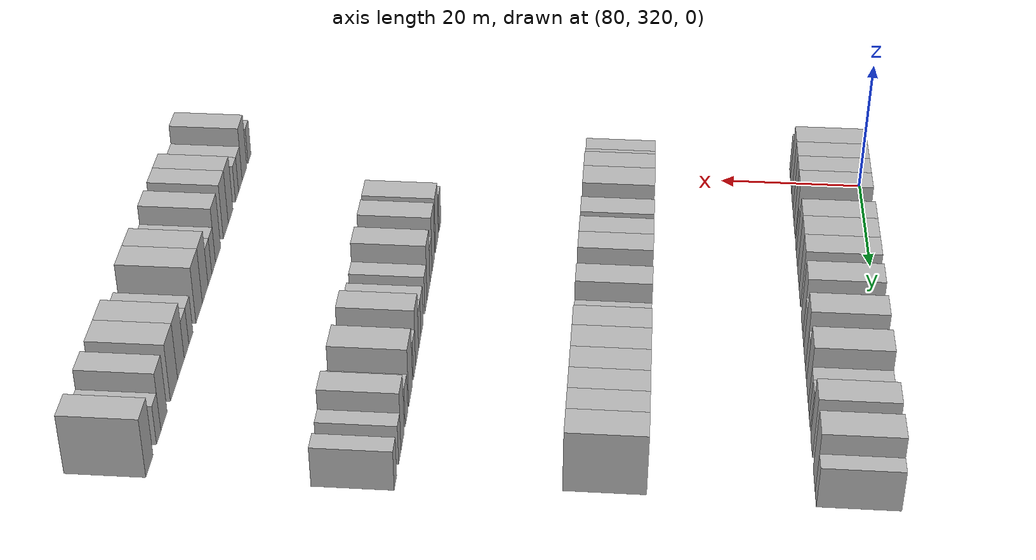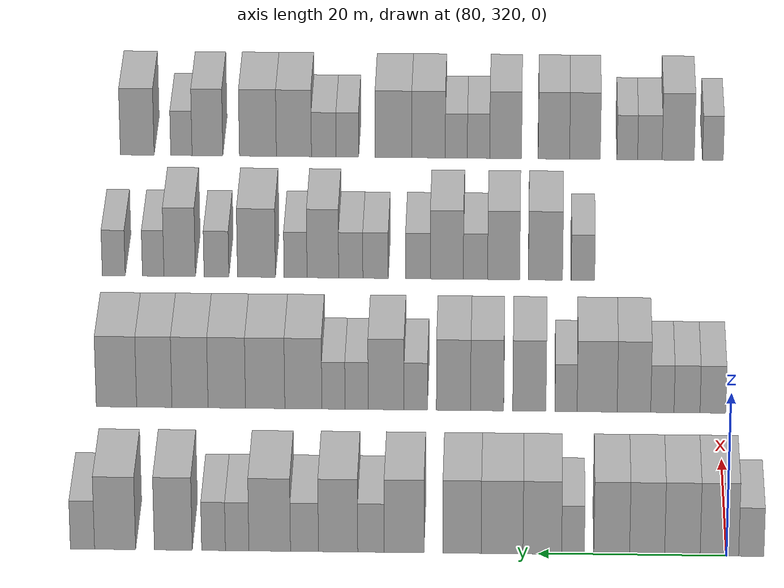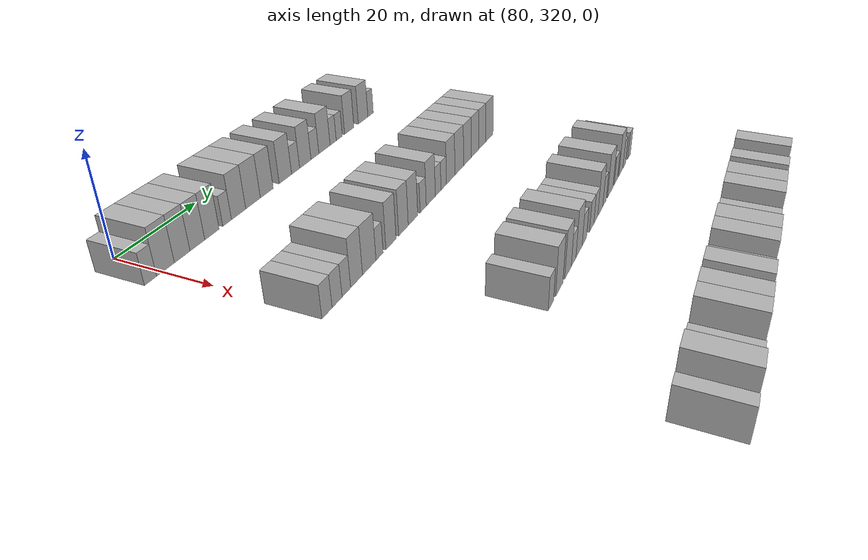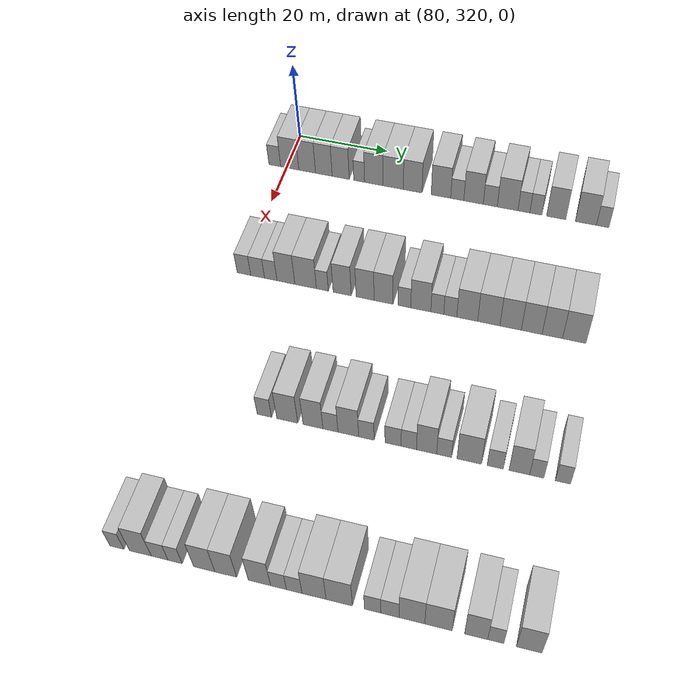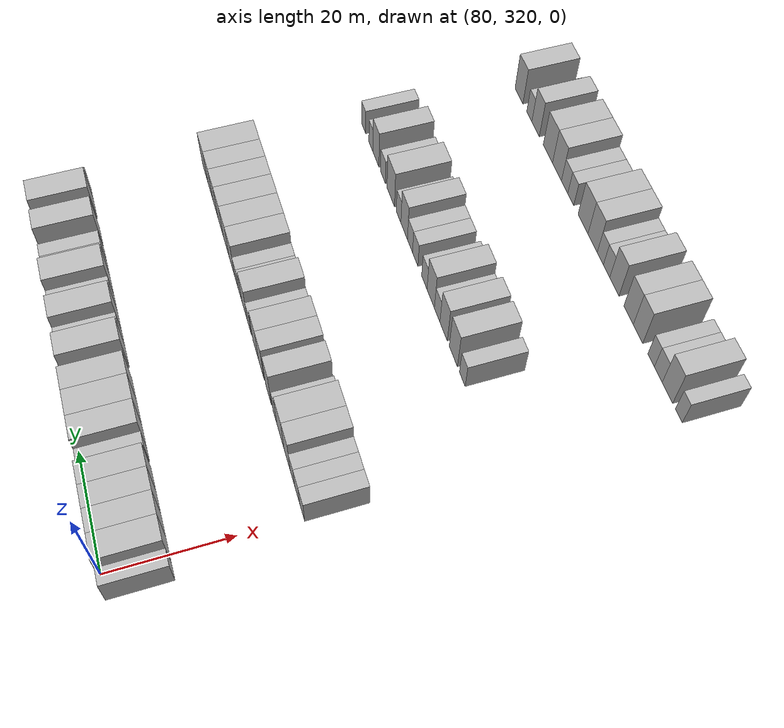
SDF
<sdf version="1.6">
 <world name="default">
  <model name="building_648">
   <static>1</static>
   <pose>85.0000 317.3850 0 0.000000 0.000000 0.000000</pose>
   <link name="link">
    <pose>0 0 3.00 0 0 0</pose>
    <collision name="collision"><geometry><box><size>10.0000 2.6740 6.0000</size></box></geometry></collision>
    <visual name="visual">
     <cast_shadows>0</cast_shadows>
     <geometry><box><size>10.0000 2.6740 6.0000</size></box></geometry>
     <material>
      <script>
       <uri>model://HANNAS_wall/materials/scripts</uri>
       <uri>model://HANNAS_wall/materials/textures</uri>
       <name>vrc/HANNAS_wall</name>
      </script>
     </material>
    </visual>
   </link>
  </model>
  <model name="building_649">
   <static>1</static>
   <pose>85.0000 320.7683 0 0.000000 0.000000 0.000000</pose>
   <link name="link">
    <pose>0 0 4.50 0 0 0</pose>
    <collision name="collision"><geometry><box><size>10.0000 4.0926 9.0000</size></box></geometry></collision>
    <visual name="visual">
     <cast_shadows>0</cast_shadows>
     <geometry><box><size>10.0000 4.0926 9.0000</size></box></geometry>
     <material>
      <script>
       <uri>model://HANNAS_wall/materials/scripts</uri>
       <uri>model://HANNAS_wall/materials/textures</uri>
       <name>vrc/HANNAS_wall</name>
      </script>
     </material>
    </visual>
   </link>
  </model>
  <model name="building_650">
   <static>1</static>
   <pose>85.0000 324.6993 0 0.000000 0.000000 0.000000</pose>
   <link name="link">
    <pose>0 0 4.50 0 0 0</pose>
    <collision name="collision"><geometry><box><size>10.0000 3.7693 9.0000</size></box></geometry></collision>
    <visual name="visual">
     <cast_shadows>0</cast_shadows>
     <geometry><box><size>10.0000 3.7693 9.0000</size></box></geometry>
     <material>
      <script>
       <uri>model://HANNAS_wall/materials/scripts</uri>
       <uri>model://HANNAS_wall/materials/textures</uri>
       <name>vrc/HANNAS_wall</name>
      </script>
     </material>
    </visual>
   </link>
  </model>
  <model name="building_651">
   <static>1</static>
   <pose>85.0000 328.4505 0 0.000000 0.000000 0.000000</pose>
   <link name="link">
    <pose>0 0 4.50 0 0 0</pose>
    <collision name="collision"><geometry><box><size>10.0000 3.7331 9.0000</size></box></geometry></collision>
    <visual name="visual">
     <cast_shadows>0</cast_shadows>
     <geometry><box><size>10.0000 3.7331 9.0000</size></box></geometry>
     <material>
      <script>
       <uri>model://HANNAS_wall/materials/scripts</uri>
       <uri>model://HANNAS_wall/materials/textures</uri>
       <name>vrc/HANNAS_wall</name>
      </script>
     </material>
    </visual>
   </link>
  </model>
  <model name="building_652">
   <static>1</static>
   <pose>85.0000 332.2208 0 0.000000 0.000000 0.000000</pose>
   <link name="link">
    <pose>0 0 4.50 0 0 0</pose>
    <collision name="collision"><geometry><box><size>10.0000 3.8075 9.0000</size></box></geometry></collision>
    <visual name="visual">
     <cast_shadows>0</cast_shadows>
     <geometry><box><size>10.0000 3.8075 9.0000</size></box></geometry>
     <material>
      <script>
       <uri>model://HANNAS_wall/materials/scripts</uri>
       <uri>model://HANNAS_wall/materials/textures</uri>
       <name>vrc/HANNAS_wall</name>
      </script>
     </material>
    </visual>
   </link>
  </model>
  <model name="building_653">
   <static>1</static>
   <pose>85.0000 336.3339 0 0.000000 0.000000 0.000000</pose>
   <link name="link">
    <pose>0 0 3.00 0 0 0</pose>
    <collision name="collision"><geometry><box><size>10.0000 2.4187 6.0000</size></box></geometry></collision>
    <visual name="visual">
     <cast_shadows>0</cast_shadows>
     <geometry><box><size>10.0000 2.4187 6.0000</size></box></geometry>
     <material>
      <script>
       <uri>model://HANNAS_wall/materials/scripts</uri>
       <uri>model://HANNAS_wall/materials/textures</uri>
       <name>vrc/HANNAS_wall</name>
      </script>
     </material>
    </visual>
   </link>
  </model>
  <model name="building_654">
   <static>1</static>
   <pose>85.0000 339.5963 0 0.000000 0.000000 0.000000</pose>
   <link name="link">
    <pose>0 0 4.50 0 0 0</pose>
    <collision name="collision"><geometry><box><size>10.0000 4.1062 9.0000</size></box></geometry></collision>
    <visual name="visual">
     <cast_shadows>0</cast_shadows>
     <geometry><box><size>10.0000 4.1062 9.0000</size></box></geometry>
     <material>
      <script>
       <uri>model://HANNAS_wall/materials/scripts</uri>
       <uri>model://HANNAS_wall/materials/textures</uri>
       <name>vrc/HANNAS_wall</name>
      </script>
     </material>
    </visual>
   </link>
  </model>
  <model name="building_655">
   <static>1</static>
   <pose>85.0000 343.8708 0 0.000000 0.000000 0.000000</pose>
   <link name="link">
    <pose>0 0 4.50 0 0 0</pose>
    <collision name="collision"><geometry><box><size>10.0000 4.4428 9.0000</size></box></geometry></collision>
    <visual name="visual">
     <cast_shadows>0</cast_shadows>
     <geometry><box><size>10.0000 4.4428 9.0000</size></box></geometry>
     <material>
      <script>
       <uri>model://HANNAS_wall/materials/scripts</uri>
       <uri>model://HANNAS_wall/materials/textures</uri>
       <name>vrc/HANNAS_wall</name>
      </script>
     </material>
    </visual>
   </link>
  </model>
  <model name="building_656">
   <static>1</static>
   <pose>85.0000 348.1341 0 0.000000 0.000000 0.000000</pose>
   <link name="link">
    <pose>0 0 4.50 0 0 0</pose>
    <collision name="collision"><geometry><box><size>10.0000 4.0838 9.0000</size></box></geometry></collision>
    <visual name="visual">
     <cast_shadows>0</cast_shadows>
     <geometry><box><size>10.0000 4.0838 9.0000</size></box></geometry>
     <material>
      <script>
       <uri>model://HANNAS_wall/materials/scripts</uri>
       <uri>model://HANNAS_wall/materials/textures</uri>
       <name>vrc/HANNAS_wall</name>
      </script>
     </material>
    </visual>
   </link>
  </model>
  <model name="building_657">
   <static>1</static>
   <pose>85.0000 354.2867 0 0.000000 0.000000 0.000000</pose>
   <link name="link">
    <pose>0 0 4.50 0 0 0</pose>
    <collision name="collision"><geometry><box><size>10.0000 4.2215 9.0000</size></box></geometry></collision>
    <visual name="visual">
     <cast_shadows>0</cast_shadows>
     <geometry><box><size>10.0000 4.2215 9.0000</size></box></geometry>
     <material>
      <script>
       <uri>model://HANNAS_wall/materials/scripts</uri>
       <uri>model://HANNAS_wall/materials/textures</uri>
       <name>vrc/HANNAS_wall</name>
      </script>
     </material>
    </visual>
   </link>
  </model>
  <model name="building_658">
   <static>1</static>
   <pose>85.0000 357.8116 0 0.000000 0.000000 0.000000</pose>
   <link name="link">
    <pose>0 0 3.00 0 0 0</pose>
    <collision name="collision"><geometry><box><size>10.0000 2.8283 6.0000</size></box></geometry></collision>
    <visual name="visual">
     <cast_shadows>0</cast_shadows>
     <geometry><box><size>10.0000 2.8283 6.0000</size></box></geometry>
     <material>
      <script>
       <uri>model://HANNAS_wall/materials/scripts</uri>
       <uri>model://HANNAS_wall/materials/textures</uri>
       <name>vrc/HANNAS_wall</name>
      </script>
     </material>
    </visual>
   </link>
  </model>
  <model name="building_659">
   <static>1</static>
   <pose>85.0000 361.3165 0 0.000000 0.000000 0.000000</pose>
   <link name="link">
    <pose>0 0 4.50 0 0 0</pose>
    <collision name="collision"><geometry><box><size>10.0000 4.1814 9.0000</size></box></geometry></collision>
    <visual name="visual">
     <cast_shadows>0</cast_shadows>
     <geometry><box><size>10.0000 4.1814 9.0000</size></box></geometry>
     <material>
      <script>
       <uri>model://HANNAS_wall/materials/scripts</uri>
       <uri>model://HANNAS_wall/materials/textures</uri>
       <name>vrc/HANNAS_wall</name>
      </script>
     </material>
    </visual>
   </link>
  </model>
  <model name="building_660">
   <static>1</static>
   <pose>85.0000 364.8974 0 0.000000 0.000000 0.000000</pose>
   <link name="link">
    <pose>0 0 3.00 0 0 0</pose>
    <collision name="collision"><geometry><box><size>10.0000 2.9804 6.0000</size></box></geometry></collision>
    <visual name="visual">
     <cast_shadows>0</cast_shadows>
     <geometry><box><size>10.0000 2.9804 6.0000</size></box></geometry>
     <material>
      <script>
       <uri>model://HANNAS_wall/materials/scripts</uri>
       <uri>model://HANNAS_wall/materials/textures</uri>
       <name>vrc/HANNAS_wall</name>
      </script>
     </material>
    </visual>
   </link>
  </model>
  <model name="building_661">
   <static>1</static>
   <pose>85.0000 368.6003 0 0.000000 0.000000 0.000000</pose>
   <link name="link">
    <pose>0 0 4.50 0 0 0</pose>
    <collision name="collision"><geometry><box><size>10.0000 4.4254 9.0000</size></box></geometry></collision>
    <visual name="visual">
     <cast_shadows>0</cast_shadows>
     <geometry><box><size>10.0000 4.4254 9.0000</size></box></geometry>
     <material>
      <script>
       <uri>model://HANNAS_wall/materials/scripts</uri>
       <uri>model://HANNAS_wall/materials/textures</uri>
       <name>vrc/HANNAS_wall</name>
      </script>
     </material>
    </visual>
   </link>
  </model>
  <model name="building_662">
   <static>1</static>
   <pose>85.0000 372.0662 0 0.000000 0.000000 0.000000</pose>
   <link name="link">
    <pose>0 0 3.00 0 0 0</pose>
    <collision name="collision"><geometry><box><size>10.0000 2.5065 6.0000</size></box></geometry></collision>
    <visual name="visual">
     <cast_shadows>0</cast_shadows>
     <geometry><box><size>10.0000 2.5065 6.0000</size></box></geometry>
     <material>
      <script>
       <uri>model://HANNAS_wall/materials/scripts</uri>
       <uri>model://HANNAS_wall/materials/textures</uri>
       <name>vrc/HANNAS_wall</name>
      </script>
     </material>
    </visual>
   </link>
  </model>
  <model name="building_663">
   <static>1</static>
   <pose>85.0000 374.5858 0 0.000000 0.000000 0.000000</pose>
   <link name="link">
    <pose>0 0 3.00 0 0 0</pose>
    <collision name="collision"><geometry><box><size>10.0000 2.5327 6.0000</size></box></geometry></collision>
    <visual name="visual">
     <cast_shadows>0</cast_shadows>
     <geometry><box><size>10.0000 2.5327 6.0000</size></box></geometry>
     <material>
      <script>
       <uri>model://HANNAS_wall/materials/scripts</uri>
       <uri>model://HANNAS_wall/materials/textures</uri>
       <name>vrc/HANNAS_wall</name>
      </script>
     </material>
    </visual>
   </link>
  </model>
  <model name="building_664">
   <static>1</static>
   <pose>85.0000 378.8697 0 0.000000 0.000000 0.000000</pose>
   <link name="link">
    <pose>0 0 4.50 0 0 0</pose>
    <collision name="collision"><geometry><box><size>10.0000 4.0352 9.0000</size></box></geometry></collision>
    <visual name="visual">
     <cast_shadows>0</cast_shadows>
     <geometry><box><size>10.0000 4.0352 9.0000</size></box></geometry>
     <material>
      <script>
       <uri>model://HANNAS_wall/materials/scripts</uri>
       <uri>model://HANNAS_wall/materials/textures</uri>
       <name>vrc/HANNAS_wall</name>
      </script>
     </material>
    </visual>
   </link>
  </model>
  <model name="building_665">
   <static>1</static>
   <pose>85.0000 385.0764 0 0.000000 0.000000 0.000000</pose>
   <link name="link">
    <pose>0 0 4.50 0 0 0</pose>
    <collision name="collision"><geometry><box><size>10.0000 4.3782 9.0000</size></box></geometry></collision>
    <visual name="visual">
     <cast_shadows>0</cast_shadows>
     <geometry><box><size>10.0000 4.3782 9.0000</size></box></geometry>
     <material>
      <script>
       <uri>model://HANNAS_wall/materials/scripts</uri>
       <uri>model://HANNAS_wall/materials/textures</uri>
       <name>vrc/HANNAS_wall</name>
      </script>
     </material>
    </visual>
   </link>
  </model>
  <model name="building_666">
   <static>1</static>
   <pose>85.0000 388.5542 0 0.000000 0.000000 0.000000</pose>
   <link name="link">
    <pose>0 0 3.00 0 0 0</pose>
    <collision name="collision"><geometry><box><size>10.0000 2.5774 6.0000</size></box></geometry></collision>
    <visual name="visual">
     <cast_shadows>0</cast_shadows>
     <geometry><box><size>10.0000 2.5774 6.0000</size></box></geometry>
     <material>
      <script>
       <uri>model://HANNAS_wall/materials/scripts</uri>
       <uri>model://HANNAS_wall/materials/textures</uri>
       <name>vrc/HANNAS_wall</name>
      </script>
     </material>
    </visual>
   </link>
  </model>
  <model name="building_878">
   <static>1</static>
   <pose>115.0000 320.7036 0 0.000000 0.000000 0.000000</pose>
   <link name="link">
    <pose>0 0 3.00 0 0 0</pose>
    <collision name="collision"><geometry><box><size>10.0000 2.8445 6.0000</size></box></geometry></collision>
    <visual name="visual">
     <cast_shadows>0</cast_shadows>
     <geometry><box><size>10.0000 2.8445 6.0000</size></box></geometry>
     <material>
      <script>
       <uri>model://HANNAS_wall/materials/scripts</uri>
       <uri>model://HANNAS_wall/materials/textures</uri>
       <name>vrc/HANNAS_wall</name>
      </script>
     </material>
    </visual>
   </link>
  </model>
  <model name="building_879">
   <static>1</static>
   <pose>115.0000 323.5686 0 0.000000 0.000000 0.000000</pose>
   <link name="link">
    <pose>0 0 3.00 0 0 0</pose>
    <collision name="collision"><geometry><box><size>10.0000 2.8855 6.0000</size></box></geometry></collision>
    <visual name="visual">
     <cast_shadows>0</cast_shadows>
     <geometry><box><size>10.0000 2.8855 6.0000</size></box></geometry>
     <material>
      <script>
       <uri>model://HANNAS_wall/materials/scripts</uri>
       <uri>model://HANNAS_wall/materials/textures</uri>
       <name>vrc/HANNAS_wall</name>
      </script>
     </material>
    </visual>
   </link>
  </model>
  <model name="building_880">
   <static>1</static>
   <pose>115.0000 326.3033 0 0.000000 0.000000 0.000000</pose>
   <link name="link">
    <pose>0 0 3.00 0 0 0</pose>
    <collision name="collision"><geometry><box><size>10.0000 2.5839 6.0000</size></box></geometry></collision>
    <visual name="visual">
     <cast_shadows>0</cast_shadows>
     <geometry><box><size>10.0000 2.5839 6.0000</size></box></geometry>
     <material>
      <script>
       <uri>model://HANNAS_wall/materials/scripts</uri>
       <uri>model://HANNAS_wall/materials/textures</uri>
       <name>vrc/HANNAS_wall</name>
      </script>
     </material>
    </visual>
   </link>
  </model>
  <model name="building_881">
   <static>1</static>
   <pose>115.0000 329.4584 0 0.000000 0.000000 0.000000</pose>
   <link name="link">
    <pose>0 0 4.50 0 0 0</pose>
    <collision name="collision"><geometry><box><size>10.0000 3.7263 9.0000</size></box></geometry></collision>
    <visual name="visual">
     <cast_shadows>0</cast_shadows>
     <geometry><box><size>10.0000 3.7263 9.0000</size></box></geometry>
     <material>
      <script>
       <uri>model://HANNAS_wall/materials/scripts</uri>
       <uri>model://HANNAS_wall/materials/textures</uri>
       <name>vrc/HANNAS_wall</name>
      </script>
     </material>
    </visual>
   </link>
  </model>
  <model name="building_882">
   <static>1</static>
   <pose>115.0000 333.5451 0 0.000000 0.000000 0.000000</pose>
   <link name="link">
    <pose>0 0 4.50 0 0 0</pose>
    <collision name="collision"><geometry><box><size>10.0000 4.4471 9.0000</size></box></geometry></collision>
    <visual name="visual">
     <cast_shadows>0</cast_shadows>
     <geometry><box><size>10.0000 4.4471 9.0000</size></box></geometry>
     <material>
      <script>
       <uri>model://HANNAS_wall/materials/scripts</uri>
       <uri>model://HANNAS_wall/materials/textures</uri>
       <name>vrc/HANNAS_wall</name>
      </script>
     </material>
    </visual>
   </link>
  </model>
  <model name="building_883">
   <static>1</static>
   <pose>115.0000 336.9957 0 0.000000 0.000000 0.000000</pose>
   <link name="link">
    <pose>0 0 3.00 0 0 0</pose>
    <collision name="collision"><geometry><box><size>10.0000 2.4541 6.0000</size></box></geometry></collision>
    <visual name="visual">
     <cast_shadows>0</cast_shadows>
     <geometry><box><size>10.0000 2.4541 6.0000</size></box></geometry>
     <material>
      <script>
       <uri>model://HANNAS_wall/materials/scripts</uri>
       <uri>model://HANNAS_wall/materials/textures</uri>
       <name>vrc/HANNAS_wall</name>
      </script>
     </material>
    </visual>
   </link>
  </model>
  <model name="building_884">
   <static>1</static>
   <pose>115.0000 341.0672 0 0.000000 0.000000 0.000000</pose>
   <link name="link">
    <pose>0 0 4.50 0 0 0</pose>
    <collision name="collision"><geometry><box><size>10.0000 3.6887 9.0000</size></box></geometry></collision>
    <visual name="visual">
     <cast_shadows>0</cast_shadows>
     <geometry><box><size>10.0000 3.6887 9.0000</size></box></geometry>
     <material>
      <script>
       <uri>model://HANNAS_wall/materials/scripts</uri>
       <uri>model://HANNAS_wall/materials/textures</uri>
       <name>vrc/HANNAS_wall</name>
      </script>
     </material>
    </visual>
   </link>
  </model>
  <model name="building_885">
   <static>1</static>
   <pose>115.0000 345.7455 0 0.000000 0.000000 0.000000</pose>
   <link name="link">
    <pose>0 0 4.50 0 0 0</pose>
    <collision name="collision"><geometry><box><size>10.0000 3.6679 9.0000</size></box></geometry></collision>
    <visual name="visual">
     <cast_shadows>0</cast_shadows>
     <geometry><box><size>10.0000 3.6679 9.0000</size></box></geometry>
     <material>
      <script>
       <uri>model://HANNAS_wall/materials/scripts</uri>
       <uri>model://HANNAS_wall/materials/textures</uri>
       <name>vrc/HANNAS_wall</name>
      </script>
     </material>
    </visual>
   </link>
  </model>
  <model name="building_886">
   <static>1</static>
   <pose>115.0000 349.4809 0 0.000000 0.000000 0.000000</pose>
   <link name="link">
    <pose>0 0 4.50 0 0 0</pose>
    <collision name="collision"><geometry><box><size>10.0000 3.8029 9.0000</size></box></geometry></collision>
    <visual name="visual">
     <cast_shadows>0</cast_shadows>
     <geometry><box><size>10.0000 3.8029 9.0000</size></box></geometry>
     <material>
      <script>
       <uri>model://HANNAS_wall/materials/scripts</uri>
       <uri>model://HANNAS_wall/materials/textures</uri>
       <name>vrc/HANNAS_wall</name>
      </script>
     </material>
    </visual>
   </link>
  </model>
  <model name="building_887">
   <static>1</static>
   <pose>115.0000 353.6740 0 0.000000 0.000000 0.000000</pose>
   <link name="link">
    <pose>0 0 3.00 0 0 0</pose>
    <collision name="collision"><geometry><box><size>10.0000 2.5834 6.0000</size></box></geometry></collision>
    <visual name="visual">
     <cast_shadows>0</cast_shadows>
     <geometry><box><size>10.0000 2.5834 6.0000</size></box></geometry>
     <material>
      <script>
       <uri>model://HANNAS_wall/materials/scripts</uri>
       <uri>model://HANNAS_wall/materials/textures</uri>
       <name>vrc/HANNAS_wall</name>
      </script>
     </material>
    </visual>
   </link>
  </model>
  <model name="building_888">
   <static>1</static>
   <pose>115.0000 356.9640 0 0.000000 0.000000 0.000000</pose>
   <link name="link">
    <pose>0 0 4.50 0 0 0</pose>
    <collision name="collision"><geometry><box><size>10.0000 3.9966 9.0000</size></box></geometry></collision>
    <visual name="visual">
     <cast_shadows>0</cast_shadows>
     <geometry><box><size>10.0000 3.9966 9.0000</size></box></geometry>
     <material>
      <script>
       <uri>model://HANNAS_wall/materials/scripts</uri>
       <uri>model://HANNAS_wall/materials/textures</uri>
       <name>vrc/HANNAS_wall</name>
      </script>
     </material>
    </visual>
   </link>
  </model>
  <model name="building_889">
   <static>1</static>
   <pose>115.0000 360.2494 0 0.000000 0.000000 0.000000</pose>
   <link name="link">
    <pose>0 0 3.00 0 0 0</pose>
    <collision name="collision"><geometry><box><size>10.0000 2.5742 6.0000</size></box></geometry></collision>
    <visual name="visual">
     <cast_shadows>0</cast_shadows>
     <geometry><box><size>10.0000 2.5742 6.0000</size></box></geometry>
     <material>
      <script>
       <uri>model://HANNAS_wall/materials/scripts</uri>
       <uri>model://HANNAS_wall/materials/textures</uri>
       <name>vrc/HANNAS_wall</name>
      </script>
     </material>
    </visual>
   </link>
  </model>
  <model name="building_890">
   <static>1</static>
   <pose>115.0000 362.8209 0 0.000000 0.000000 0.000000</pose>
   <link name="link">
    <pose>0 0 3.00 0 0 0</pose>
    <collision name="collision"><geometry><box><size>10.0000 2.5688 6.0000</size></box></geometry></collision>
    <visual name="visual">
     <cast_shadows>0</cast_shadows>
     <geometry><box><size>10.0000 2.5688 6.0000</size></box></geometry>
     <material>
      <script>
       <uri>model://HANNAS_wall/materials/scripts</uri>
       <uri>model://HANNAS_wall/materials/textures</uri>
       <name>vrc/HANNAS_wall</name>
      </script>
     </material>
    </visual>
   </link>
  </model>
  <model name="building_891">
   <static>1</static>
   <pose>115.0000 366.1637 0 0.000000 0.000000 0.000000</pose>
   <link name="link">
    <pose>0 0 4.50 0 0 0</pose>
    <collision name="collision"><geometry><box><size>10.0000 4.1167 9.0000</size></box></geometry></collision>
    <visual name="visual">
     <cast_shadows>0</cast_shadows>
     <geometry><box><size>10.0000 4.1167 9.0000</size></box></geometry>
     <material>
      <script>
       <uri>model://HANNAS_wall/materials/scripts</uri>
       <uri>model://HANNAS_wall/materials/textures</uri>
       <name>vrc/HANNAS_wall</name>
      </script>
     </material>
    </visual>
   </link>
  </model>
  <model name="building_892">
   <static>1</static>
   <pose>115.0000 370.4058 0 0.000000 0.000000 0.000000</pose>
   <link name="link">
    <pose>0 0 4.50 0 0 0</pose>
    <collision name="collision"><geometry><box><size>10.0000 4.3675 9.0000</size></box></geometry></collision>
    <visual name="visual">
     <cast_shadows>0</cast_shadows>
     <geometry><box><size>10.0000 4.3675 9.0000</size></box></geometry>
     <material>
      <script>
       <uri>model://HANNAS_wall/materials/scripts</uri>
       <uri>model://HANNAS_wall/materials/textures</uri>
       <name>vrc/HANNAS_wall</name>
      </script>
     </material>
    </visual>
   </link>
  </model>
  <model name="building_893">
   <static>1</static>
   <pose>115.0000 374.6741 0 0.000000 0.000000 0.000000</pose>
   <link name="link">
    <pose>0 0 4.50 0 0 0</pose>
    <collision name="collision"><geometry><box><size>10.0000 4.1692 9.0000</size></box></geometry></collision>
    <visual name="visual">
     <cast_shadows>0</cast_shadows>
     <geometry><box><size>10.0000 4.1692 9.0000</size></box></geometry>
     <material>
      <script>
       <uri>model://HANNAS_wall/materials/scripts</uri>
       <uri>model://HANNAS_wall/materials/textures</uri>
       <name>vrc/HANNAS_wall</name>
      </script>
     </material>
    </visual>
   </link>
  </model>
  <model name="building_894">
   <static>1</static>
   <pose>115.0000 378.7660 0 0.000000 0.000000 0.000000</pose>
   <link name="link">
    <pose>0 0 4.50 0 0 0</pose>
    <collision name="collision"><geometry><box><size>10.0000 4.0147 9.0000</size></box></geometry></collision>
    <visual name="visual">
     <cast_shadows>0</cast_shadows>
     <geometry><box><size>10.0000 4.0147 9.0000</size></box></geometry>
     <material>
      <script>
       <uri>model://HANNAS_wall/materials/scripts</uri>
       <uri>model://HANNAS_wall/materials/textures</uri>
       <name>vrc/HANNAS_wall</name>
      </script>
     </material>
    </visual>
   </link>
  </model>
  <model name="building_895">
   <static>1</static>
   <pose>115.0000 382.7391 0 0.000000 0.000000 0.000000</pose>
   <link name="link">
    <pose>0 0 4.50 0 0 0</pose>
    <collision name="collision"><geometry><box><size>10.0000 3.9314 9.0000</size></box></geometry></collision>
    <visual name="visual">
     <cast_shadows>0</cast_shadows>
     <geometry><box><size>10.0000 3.9314 9.0000</size></box></geometry>
     <material>
      <script>
       <uri>model://HANNAS_wall/materials/scripts</uri>
       <uri>model://HANNAS_wall/materials/textures</uri>
       <name>vrc/HANNAS_wall</name>
      </script>
     </material>
    </visual>
   </link>
  </model>
  <model name="building_896">
   <static>1</static>
   <pose>115.0000 386.9502 0 0.000000 0.000000 0.000000</pose>
   <link name="link">
    <pose>0 0 4.50 0 0 0</pose>
    <collision name="collision"><geometry><box><size>10.0000 4.4909 9.0000</size></box></geometry></collision>
    <visual name="visual">
     <cast_shadows>0</cast_shadows>
     <geometry><box><size>10.0000 4.4909 9.0000</size></box></geometry>
     <material>
      <script>
       <uri>model://HANNAS_wall/materials/scripts</uri>
       <uri>model://HANNAS_wall/materials/textures</uri>
       <name>vrc/HANNAS_wall</name>
      </script>
     </material>
    </visual>
   </link>
  </model>
  <model name="building_1115">
   <static>1</static>
   <pose>145.0000 334.9631 0 0.000000 0.000000 0.000000</pose>
   <link name="link">
    <pose>0 0 3.00 0 0 0</pose>
    <collision name="collision"><geometry><box><size>10.0000 2.7163 6.0000</size></box></geometry></collision>
    <visual name="visual">
     <cast_shadows>0</cast_shadows>
     <geometry><box><size>10.0000 2.7163 6.0000</size></box></geometry>
     <material>
      <script>
       <uri>model://HANNAS_wall/materials/scripts</uri>
       <uri>model://HANNAS_wall/materials/textures</uri>
       <name>vrc/HANNAS_wall</name>
      </script>
     </material>
    </visual>
   </link>
  </model>
  <model name="building_1116">
   <static>1</static>
   <pose>145.0000 339.2957 0 0.000000 0.000000 0.000000</pose>
   <link name="link">
    <pose>0 0 4.50 0 0 0</pose>
    <collision name="collision"><geometry><box><size>10.0000 3.9489 9.0000</size></box></geometry></collision>
    <visual name="visual">
     <cast_shadows>0</cast_shadows>
     <geometry><box><size>10.0000 3.9489 9.0000</size></box></geometry>
     <material>
      <script>
       <uri>model://HANNAS_wall/materials/scripts</uri>
       <uri>model://HANNAS_wall/materials/textures</uri>
       <name>vrc/HANNAS_wall</name>
      </script>
     </material>
    </visual>
   </link>
  </model>
  <model name="building_1117">
   <static>1</static>
   <pose>145.0000 344.1258 0 0.000000 0.000000 0.000000</pose>
   <link name="link">
    <pose>0 0 4.50 0 0 0</pose>
    <collision name="collision"><geometry><box><size>10.0000 3.7114 9.0000</size></box></geometry></collision>
    <visual name="visual">
     <cast_shadows>0</cast_shadows>
     <geometry><box><size>10.0000 3.7114 9.0000</size></box></geometry>
     <material>
      <script>
       <uri>model://HANNAS_wall/materials/scripts</uri>
       <uri>model://HANNAS_wall/materials/textures</uri>
       <name>vrc/HANNAS_wall</name>
      </script>
     </material>
    </visual>
   </link>
  </model>
  <model name="building_1118">
   <static>1</static>
   <pose>145.0000 347.3836 0 0.000000 0.000000 0.000000</pose>
   <link name="link">
    <pose>0 0 3.00 0 0 0</pose>
    <collision name="collision"><geometry><box><size>10.0000 2.8042 6.0000</size></box></geometry></collision>
    <visual name="visual">
     <cast_shadows>0</cast_shadows>
     <geometry><box><size>10.0000 2.8042 6.0000</size></box></geometry>
     <material>
      <script>
       <uri>model://HANNAS_wall/materials/scripts</uri>
       <uri>model://HANNAS_wall/materials/textures</uri>
       <name>vrc/HANNAS_wall</name>
      </script>
     </material>
    </visual>
   </link>
  </model>
  <model name="building_1119">
   <static>1</static>
   <pose>145.0000 350.7057 0 0.000000 0.000000 0.000000</pose>
   <link name="link">
    <pose>0 0 4.50 0 0 0</pose>
    <collision name="collision"><geometry><box><size>10.0000 3.8399 9.0000</size></box></geometry></collision>
    <visual name="visual">
     <cast_shadows>0</cast_shadows>
     <geometry><box><size>10.0000 3.8399 9.0000</size></box></geometry>
     <material>
      <script>
       <uri>model://HANNAS_wall/materials/scripts</uri>
       <uri>model://HANNAS_wall/materials/textures</uri>
       <name>vrc/HANNAS_wall</name>
      </script>
     </material>
    </visual>
   </link>
  </model>
  <model name="building_1120">
   <static>1</static>
   <pose>145.0000 354.0512 0 0.000000 0.000000 0.000000</pose>
   <link name="link">
    <pose>0 0 3.00 0 0 0</pose>
    <collision name="collision"><geometry><box><size>10.0000 2.8512 6.0000</size></box></geometry></collision>
    <visual name="visual">
     <cast_shadows>0</cast_shadows>
     <geometry><box><size>10.0000 2.8512 6.0000</size></box></geometry>
     <material>
      <script>
       <uri>model://HANNAS_wall/materials/scripts</uri>
       <uri>model://HANNAS_wall/materials/textures</uri>
       <name>vrc/HANNAS_wall</name>
      </script>
     </material>
    </visual>
   </link>
  </model>
  <model name="building_1121">
   <static>1</static>
   <pose>145.0000 358.9495 0 0.000000 0.000000 0.000000</pose>
   <link name="link">
    <pose>0 0 3.00 0 0 0</pose>
    <collision name="collision"><geometry><box><size>10.0000 2.9454 6.0000</size></box></geometry></collision>
    <visual name="visual">
     <cast_shadows>0</cast_shadows>
     <geometry><box><size>10.0000 2.9454 6.0000</size></box></geometry>
     <material>
      <script>
       <uri>model://HANNAS_wall/materials/scripts</uri>
       <uri>model://HANNAS_wall/materials/textures</uri>
       <name>vrc/HANNAS_wall</name>
      </script>
     </material>
    </visual>
   </link>
  </model>
  <model name="building_1122">
   <static>1</static>
   <pose>145.0000 361.8230 0 0.000000 0.000000 0.000000</pose>
   <link name="link">
    <pose>0 0 3.00 0 0 0</pose>
    <collision name="collision"><geometry><box><size>10.0000 2.8016 6.0000</size></box></geometry></collision>
    <visual name="visual">
     <cast_shadows>0</cast_shadows>
     <geometry><box><size>10.0000 2.8016 6.0000</size></box></geometry>
     <material>
      <script>
       <uri>model://HANNAS_wall/materials/scripts</uri>
       <uri>model://HANNAS_wall/materials/textures</uri>
       <name>vrc/HANNAS_wall</name>
      </script>
     </material>
    </visual>
   </link>
  </model>
  <model name="building_1123">
   <static>1</static>
   <pose>145.0000 365.0542 0 0.000000 0.000000 0.000000</pose>
   <link name="link">
    <pose>0 0 4.50 0 0 0</pose>
    <collision name="collision"><geometry><box><size>10.0000 3.6607 9.0000</size></box></geometry></collision>
    <visual name="visual">
     <cast_shadows>0</cast_shadows>
     <geometry><box><size>10.0000 3.6607 9.0000</size></box></geometry>
     <material>
      <script>
       <uri>model://HANNAS_wall/materials/scripts</uri>
       <uri>model://HANNAS_wall/materials/textures</uri>
       <name>vrc/HANNAS_wall</name>
      </script>
     </material>
    </visual>
   </link>
  </model>
  <model name="building_1124">
   <static>1</static>
   <pose>145.0000 368.2164 0 0.000000 0.000000 0.000000</pose>
   <link name="link">
    <pose>0 0 3.00 0 0 0</pose>
    <collision name="collision"><geometry><box><size>10.0000 2.6638 6.0000</size></box></geometry></collision>
    <visual name="visual">
     <cast_shadows>0</cast_shadows>
     <geometry><box><size>10.0000 2.6638 6.0000</size></box></geometry>
     <material>
      <script>
       <uri>model://HANNAS_wall/materials/scripts</uri>
       <uri>model://HANNAS_wall/materials/textures</uri>
       <name>vrc/HANNAS_wall</name>
      </script>
     </material>
    </visual>
   </link>
  </model>
  <model name="building_1125">
   <static>1</static>
   <pose>145.0000 372.7443 0 0.000000 0.000000 0.000000</pose>
   <link name="link">
    <pose>0 0 4.50 0 0 0</pose>
    <collision name="collision"><geometry><box><size>10.0000 4.3919 9.0000</size></box></geometry></collision>
    <visual name="visual">
     <cast_shadows>0</cast_shadows>
     <geometry><box><size>10.0000 4.3919 9.0000</size></box></geometry>
     <material>
      <script>
       <uri>model://HANNAS_wall/materials/scripts</uri>
       <uri>model://HANNAS_wall/materials/textures</uri>
       <name>vrc/HANNAS_wall</name>
      </script>
     </material>
    </visual>
   </link>
  </model>
  <model name="building_1126">
   <static>1</static>
   <pose>145.0000 377.3781 0 0.000000 0.000000 0.000000</pose>
   <link name="link">
    <pose>0 0 3.00 0 0 0</pose>
    <collision name="collision"><geometry><box><size>10.0000 2.8758 6.0000</size></box></geometry></collision>
    <visual name="visual">
     <cast_shadows>0</cast_shadows>
     <geometry><box><size>10.0000 2.8758 6.0000</size></box></geometry>
     <material>
      <script>
       <uri>model://HANNAS_wall/materials/scripts</uri>
       <uri>model://HANNAS_wall/materials/textures</uri>
       <name>vrc/HANNAS_wall</name>
      </script>
     </material>
    </visual>
   </link>
  </model>
  <model name="building_1127">
   <static>1</static>
   <pose>145.0000 381.6394 0 0.000000 0.000000 0.000000</pose>
   <link name="link">
    <pose>0 0 4.50 0 0 0</pose>
    <collision name="collision"><geometry><box><size>10.0000 3.6468 9.0000</size></box></geometry></collision>
    <visual name="visual">
     <cast_shadows>0</cast_shadows>
     <geometry><box><size>10.0000 3.6468 9.0000</size></box></geometry>
     <material>
      <script>
       <uri>model://HANNAS_wall/materials/scripts</uri>
       <uri>model://HANNAS_wall/materials/textures</uri>
       <name>vrc/HANNAS_wall</name>
      </script>
     </material>
    </visual>
   </link>
  </model>
  <model name="building_1128">
   <static>1</static>
   <pose>145.0000 384.7108 0 0.000000 0.000000 0.000000</pose>
   <link name="link">
    <pose>0 0 3.00 0 0 0</pose>
    <collision name="collision"><geometry><box><size>10.0000 2.4959 6.0000</size></box></geometry></collision>
    <visual name="visual">
     <cast_shadows>0</cast_shadows>
     <geometry><box><size>10.0000 2.4959 6.0000</size></box></geometry>
     <material>
      <script>
       <uri>model://HANNAS_wall/materials/scripts</uri>
       <uri>model://HANNAS_wall/materials/textures</uri>
       <name>vrc/HANNAS_wall</name>
      </script>
     </material>
    </visual>
   </link>
  </model>
  <model name="building_1129">
   <static>1</static>
   <pose>145.0000 389.2856 0 0.000000 0.000000 0.000000</pose>
   <link name="link">
    <pose>0 0 3.00 0 0 0</pose>
    <collision name="collision"><geometry><box><size>10.0000 2.6537 6.0000</size></box></geometry></collision>
    <visual name="visual">
     <cast_shadows>0</cast_shadows>
     <geometry><box><size>10.0000 2.6537 6.0000</size></box></geometry>
     <material>
      <script>
       <uri>model://HANNAS_wall/materials/scripts</uri>
       <uri>model://HANNAS_wall/materials/textures</uri>
       <name>vrc/HANNAS_wall</name>
      </script>
     </material>
    </visual>
   </link>
  </model>
  <model name="building_1332">
   <static>1</static>
   <pose>175.0000 319.1782 0 0.000000 0.000000 0.000000</pose>
   <link name="link">
    <pose>0 0 3.00 0 0 0</pose>
    <collision name="collision"><geometry><box><size>10.0000 2.4904 6.0000</size></box></geometry></collision>
    <visual name="visual">
     <cast_shadows>0</cast_shadows>
     <geometry><box><size>10.0000 2.4904 6.0000</size></box></geometry>
     <material>
      <script>
       <uri>model://HANNAS_wall/materials/scripts</uri>
       <uri>model://HANNAS_wall/materials/textures</uri>
       <name>vrc/HANNAS_wall</name>
      </script>
     </material>
    </visual>
   </link>
  </model>
  <model name="building_1333">
   <static>1</static>
   <pose>175.0000 323.3541 0 0.000000 0.000000 0.000000</pose>
   <link name="link">
    <pose>0 0 4.50 0 0 0</pose>
    <collision name="collision"><geometry><box><size>10.0000 3.8613 9.0000</size></box></geometry></collision>
    <visual name="visual">
     <cast_shadows>0</cast_shadows>
     <geometry><box><size>10.0000 3.8613 9.0000</size></box></geometry>
     <material>
      <script>
       <uri>model://HANNAS_wall/materials/scripts</uri>
       <uri>model://HANNAS_wall/materials/textures</uri>
       <name>vrc/HANNAS_wall</name>
      </script>
     </material>
    </visual>
   </link>
  </model>
  <model name="building_1334">
   <static>1</static>
   <pose>175.0000 326.7574 0 0.000000 0.000000 0.000000</pose>
   <link name="link">
    <pose>0 0 3.00 0 0 0</pose>
    <collision name="collision"><geometry><box><size>10.0000 2.9454 6.0000</size></box></geometry></collision>
    <visual name="visual">
     <cast_shadows>0</cast_shadows>
     <geometry><box><size>10.0000 2.9454 6.0000</size></box></geometry>
     <material>
      <script>
       <uri>model://HANNAS_wall/materials/scripts</uri>
       <uri>model://HANNAS_wall/materials/textures</uri>
       <name>vrc/HANNAS_wall</name>
      </script>
     </material>
    </visual>
   </link>
  </model>
  <model name="building_1335">
   <static>1</static>
   <pose>175.0000 329.4741 0 0.000000 0.000000 0.000000</pose>
   <link name="link">
    <pose>0 0 3.00 0 0 0</pose>
    <collision name="collision"><geometry><box><size>10.0000 2.4880 6.0000</size></box></geometry></collision>
    <visual name="visual">
     <cast_shadows>0</cast_shadows>
     <geometry><box><size>10.0000 2.4880 6.0000</size></box></geometry>
     <material>
      <script>
       <uri>model://HANNAS_wall/materials/scripts</uri>
       <uri>model://HANNAS_wall/materials/textures</uri>
       <name>vrc/HANNAS_wall</name>
      </script>
     </material>
    </visual>
   </link>
  </model>
  <model name="building_1336">
   <static>1</static>
   <pose>175.0000 334.5675 0 0.000000 0.000000 0.000000</pose>
   <link name="link">
    <pose>0 0 4.50 0 0 0</pose>
    <collision name="collision"><geometry><box><size>10.0000 3.6990 9.0000</size></box></geometry></collision>
    <visual name="visual">
     <cast_shadows>0</cast_shadows>
     <geometry><box><size>10.0000 3.6990 9.0000</size></box></geometry>
     <material>
      <script>
       <uri>model://HANNAS_wall/materials/scripts</uri>
       <uri>model://HANNAS_wall/materials/textures</uri>
       <name>vrc/HANNAS_wall</name>
      </script>
     </material>
    </visual>
   </link>
  </model>
  <model name="building_1337">
   <static>1</static>
   <pose>175.0000 338.3024 0 0.000000 0.000000 0.000000</pose>
   <link name="link">
    <pose>0 0 4.50 0 0 0</pose>
    <collision name="collision"><geometry><box><size>10.0000 3.7707 9.0000</size></box></geometry></collision>
    <visual name="visual">
     <cast_shadows>0</cast_shadows>
     <geometry><box><size>10.0000 3.7707 9.0000</size></box></geometry>
     <material>
      <script>
       <uri>model://HANNAS_wall/materials/scripts</uri>
       <uri>model://HANNAS_wall/materials/textures</uri>
       <name>vrc/HANNAS_wall</name>
      </script>
     </material>
    </visual>
   </link>
  </model>
  <model name="building_1338">
   <static>1</static>
   <pose>175.0000 344.0984 0 0.000000 0.000000 0.000000</pose>
   <link name="link">
    <pose>0 0 4.50 0 0 0</pose>
    <collision name="collision"><geometry><box><size>10.0000 3.8214 9.0000</size></box></geometry></collision>
    <visual name="visual">
     <cast_shadows>0</cast_shadows>
     <geometry><box><size>10.0000 3.8214 9.0000</size></box></geometry>
     <material>
      <script>
       <uri>model://HANNAS_wall/materials/scripts</uri>
       <uri>model://HANNAS_wall/materials/textures</uri>
       <name>vrc/HANNAS_wall</name>
      </script>
     </material>
    </visual>
   </link>
  </model>
  <model name="building_1339">
   <static>1</static>
   <pose>175.0000 347.3582 0 0.000000 0.000000 0.000000</pose>
   <link name="link">
    <pose>0 0 3.00 0 0 0</pose>
    <collision name="collision"><geometry><box><size>10.0000 2.6981 6.0000</size></box></geometry></collision>
    <visual name="visual">
     <cast_shadows>0</cast_shadows>
     <geometry><box><size>10.0000 2.6981 6.0000</size></box></geometry>
     <material>
      <script>
       <uri>model://HANNAS_wall/materials/scripts</uri>
       <uri>model://HANNAS_wall/materials/textures</uri>
       <name>vrc/HANNAS_wall</name>
      </script>
     </material>
    </visual>
   </link>
  </model>
  <model name="building_1340">
   <static>1</static>
   <pose>175.0000 350.0331 0 0.000000 0.000000 0.000000</pose>
   <link name="link">
    <pose>0 0 3.00 0 0 0</pose>
    <collision name="collision"><geometry><box><size>10.0000 2.6516 6.0000</size></box></geometry></collision>
    <visual name="visual">
     <cast_shadows>0</cast_shadows>
     <geometry><box><size>10.0000 2.6516 6.0000</size></box></geometry>
     <material>
      <script>
       <uri>model://HANNAS_wall/materials/scripts</uri>
       <uri>model://HANNAS_wall/materials/textures</uri>
       <name>vrc/HANNAS_wall</name>
      </script>
     </material>
    </visual>
   </link>
  </model>
  <model name="building_1341">
   <static>1</static>
   <pose>175.0000 353.3768 0 0.000000 0.000000 0.000000</pose>
   <link name="link">
    <pose>0 0 4.50 0 0 0</pose>
    <collision name="collision"><geometry><box><size>10.0000 4.0358 9.0000</size></box></geometry></collision>
    <visual name="visual">
     <cast_shadows>0</cast_shadows>
     <geometry><box><size>10.0000 4.0358 9.0000</size></box></geometry>
     <material>
      <script>
       <uri>model://HANNAS_wall/materials/scripts</uri>
       <uri>model://HANNAS_wall/materials/textures</uri>
       <name>vrc/HANNAS_wall</name>
      </script>
     </material>
    </visual>
   </link>
  </model>
  <model name="building_1342">
   <static>1</static>
   <pose>175.0000 357.5961 0 0.000000 0.000000 0.000000</pose>
   <link name="link">
    <pose>0 0 4.50 0 0 0</pose>
    <collision name="collision"><geometry><box><size>10.0000 4.4030 9.0000</size></box></geometry></collision>
    <visual name="visual">
     <cast_shadows>0</cast_shadows>
     <geometry><box><size>10.0000 4.4030 9.0000</size></box></geometry>
     <material>
      <script>
       <uri>model://HANNAS_wall/materials/scripts</uri>
       <uri>model://HANNAS_wall/materials/textures</uri>
       <name>vrc/HANNAS_wall</name>
      </script>
     </material>
    </visual>
   </link>
  </model>
  <model name="building_1343">
   <static>1</static>
   <pose>175.0000 363.1525 0 0.000000 0.000000 0.000000</pose>
   <link name="link">
    <pose>0 0 3.00 0 0 0</pose>
    <collision name="collision"><geometry><box><size>10.0000 2.7098 6.0000</size></box></geometry></collision>
    <visual name="visual">
     <cast_shadows>0</cast_shadows>
     <geometry><box><size>10.0000 2.7098 6.0000</size></box></geometry>
     <material>
      <script>
       <uri>model://HANNAS_wall/materials/scripts</uri>
       <uri>model://HANNAS_wall/materials/textures</uri>
       <name>vrc/HANNAS_wall</name>
      </script>
     </material>
    </visual>
   </link>
  </model>
  <model name="building_1344">
   <static>1</static>
   <pose>175.0000 365.9976 0 0.000000 0.000000 0.000000</pose>
   <link name="link">
    <pose>0 0 3.00 0 0 0</pose>
    <collision name="collision"><geometry><box><size>10.0000 2.9803 6.0000</size></box></geometry></collision>
    <visual name="visual">
     <cast_shadows>0</cast_shadows>
     <geometry><box><size>10.0000 2.9803 6.0000</size></box></geometry>
     <material>
      <script>
       <uri>model://HANNAS_wall/materials/scripts</uri>
       <uri>model://HANNAS_wall/materials/textures</uri>
       <name>vrc/HANNAS_wall</name>
      </script>
     </material>
    </visual>
   </link>
  </model>
  <model name="building_1345">
   <static>1</static>
   <pose>175.0000 369.5984 0 0.000000 0.000000 0.000000</pose>
   <link name="link">
    <pose>0 0 4.50 0 0 0</pose>
    <collision name="collision"><geometry><box><size>10.0000 4.2213 9.0000</size></box></geometry></collision>
    <visual name="visual">
     <cast_shadows>0</cast_shadows>
     <geometry><box><size>10.0000 4.2213 9.0000</size></box></geometry>
     <material>
      <script>
       <uri>model://HANNAS_wall/materials/scripts</uri>
       <uri>model://HANNAS_wall/materials/textures</uri>
       <name>vrc/HANNAS_wall</name>
      </script>
     </material>
    </visual>
   </link>
  </model>
  <model name="building_1346">
   <static>1</static>
   <pose>175.0000 373.9358 0 0.000000 0.000000 0.000000</pose>
   <link name="link">
    <pose>0 0 4.50 0 0 0</pose>
    <collision name="collision"><geometry><box><size>10.0000 4.4534 9.0000</size></box></geometry></collision>
    <visual name="visual">
     <cast_shadows>0</cast_shadows>
     <geometry><box><size>10.0000 4.4534 9.0000</size></box></geometry>
     <material>
      <script>
       <uri>model://HANNAS_wall/materials/scripts</uri>
       <uri>model://HANNAS_wall/materials/textures</uri>
       <name>vrc/HANNAS_wall</name>
      </script>
     </material>
    </visual>
   </link>
  </model>
  <model name="building_1347">
   <static>1</static>
   <pose>175.0000 380.0177 0 0.000000 0.000000 0.000000</pose>
   <link name="link">
    <pose>0 0 4.50 0 0 0</pose>
    <collision name="collision"><geometry><box><size>10.0000 3.7106 9.0000</size></box></geometry></collision>
    <visual name="visual">
     <cast_shadows>0</cast_shadows>
     <geometry><box><size>10.0000 3.7106 9.0000</size></box></geometry>
     <material>
      <script>
       <uri>model://HANNAS_wall/materials/scripts</uri>
       <uri>model://HANNAS_wall/materials/textures</uri>
       <name>vrc/HANNAS_wall</name>
      </script>
     </material>
    </visual>
   </link>
  </model>
  <model name="building_1348">
   <static>1</static>
   <pose>175.0000 383.1603 0 0.000000 0.000000 0.000000</pose>
   <link name="link">
    <pose>0 0 3.00 0 0 0</pose>
    <collision name="collision"><geometry><box><size>10.0000 2.5745 6.0000</size></box></geometry></collision>
    <visual name="visual">
     <cast_shadows>0</cast_shadows>
     <geometry><box><size>10.0000 2.5745 6.0000</size></box></geometry>
     <material>
      <script>
       <uri>model://HANNAS_wall/materials/scripts</uri>
       <uri>model://HANNAS_wall/materials/textures</uri>
       <name>vrc/HANNAS_wall</name>
      </script>
     </material>
    </visual>
   </link>
  </model>
  <model name="building_1349">
   <static>1</static>
   <pose>175.0000 388.4824 0 0.000000 0.000000 0.000000</pose>
   <link name="link">
    <pose>0 0 4.50 0 0 0</pose>
    <collision name="collision"><geometry><box><size>10.0000 4.0698 9.0000</size></box></geometry></collision>
    <visual name="visual">
     <cast_shadows>0</cast_shadows>
     <geometry><box><size>10.0000 4.0698 9.0000</size></box></geometry>
     <material>
      <script>
       <uri>model://HANNAS_wall/materials/scripts</uri>
       <uri>model://HANNAS_wall/materials/textures</uri>
       <name>vrc/HANNAS_wall</name>
      </script>
     </material>
    </visual>
   </link>
  </model>
 </world>
</sdf>
